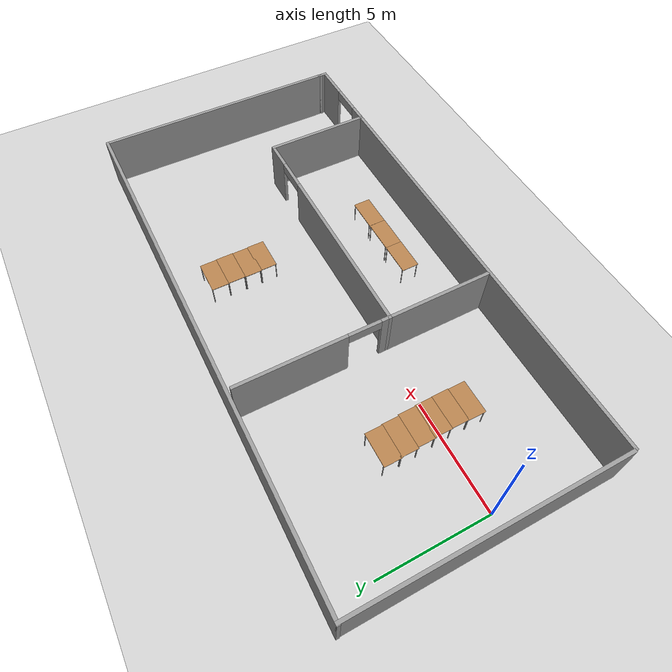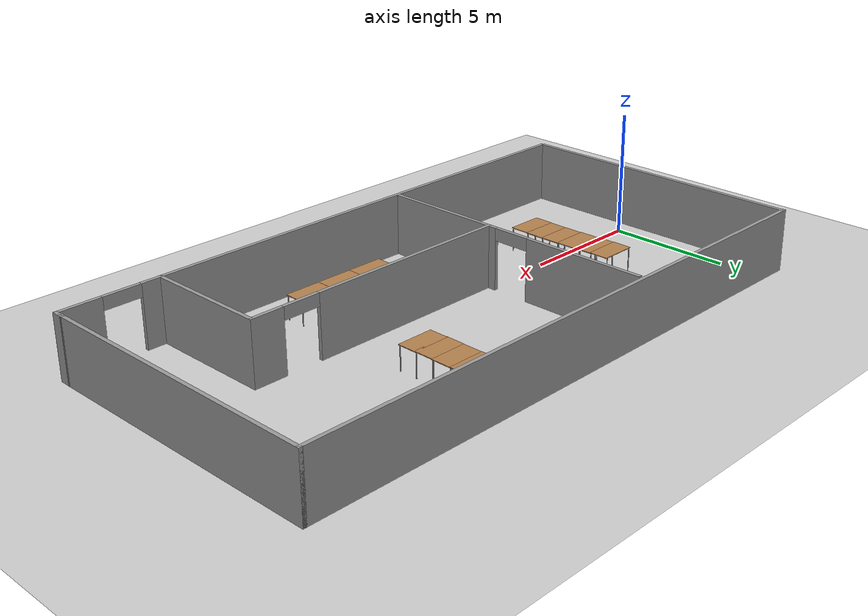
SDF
<sdf version="1.7">
 <world name="default">
  <light name="sun" type="directional">
   <pose>0 0 10 0 -0 0</pose>
   <diffuse>0.8 0.8 0.8 1</diffuse>
   <specular>0.2 0.2 0.2 1</specular>
   <attenuation>
    <range>1000</range>
    <constant>0.9</constant>
    <linear>0.01</linear>
    <quadratic>0.001</quadratic>
   </attenuation>
   <direction>-0.5 0.1 -0.9</direction>
   <spot><inner_angle>0</inner_angle><outer_angle>0</outer_angle><falloff>0</falloff></spot>
  </light>
  <model name="ground_plane">
   <static>1</static>
   <link name="link">
    <collision name="collision">
     <geometry><plane><normal>0 0 1</normal><size>100 100</size></plane></geometry>
     <surface>
      <contact><collide_bitmask>65535</collide_bitmask></contact>
      <friction><ode><mu>100</mu><mu2>50</mu2></ode></friction>
     </surface>
    </collision>
    <visual name="visual">
     <cast_shadows>0</cast_shadows>
     <geometry><plane><normal>0 0 1</normal><size>100 100</size></plane></geometry>
     <material>
      <script><uri>file://media/materials/scripts/gazebo.material</uri><name>Gazebo/Grey</name></script>
     </material>
    </visual>
   </link>
  </model>
  <gravity>0 0 -9.8</gravity>
  <magnetic_field>6e-06 2.3e-05 -4.2e-05</magnetic_field>
  <atmosphere type="adiabatic"/>
  <physics type="ode">
   <max_step_size>0.001</max_step_size>
   <real_time_factor>1</real_time_factor>
   <real_time_update_rate>1000</real_time_update_rate>
  </physics>
  <scene><ambient>0.4 0.4 0.4 1</ambient><background>0.7 0.7 0.7 1</background><shadows>1</shadows></scene>
  <spherical_coordinates>
   <surface_model>EARTH_WGS84</surface_model>
   <latitude_deg>0</latitude_deg>
   <longitude_deg>0</longitude_deg>
   <elevation>0</elevation>
   <heading_deg>0</heading_deg>
  </spherical_coordinates>
  <model name="cureroom">
   <pose>11.051 0.992144 0 0.005313 -0 0</pose>
   <link name="Wall_30">
    <collision name="Wall_30_Collision">
     <geometry><box><size>12 0.15 2.5</size></box></geometry>
     <pose>0 0 1.25 0 -0 0</pose>
    </collision>
    <visual name="Wall_30_Visual">
     <pose>0 0 1.25 0 -0 0</pose>
     <geometry><box><size>12 0.15 2.5</size></box></geometry>
     <material>
      <script><uri>file://media/materials/scripts/gazebo.material</uri><name>Gazebo/Grey</name></script>
      <ambient>1 1 1 1</ambient>
     </material>
     <meta><layer>0</layer></meta>
    </visual>
    <pose>-11.9467 0.049999 0 0 -0 1.5708</pose>
   </link>
   <link name="Wall_31">
    <collision name="Wall_31_Collision">
     <geometry><box><size>24.0798 0.15 2.5</size></box></geometry>
     <pose>0 0 1.25 0 -0 0</pose>
    </collision>
    <visual name="Wall_31_Visual">
     <pose>0 0 1.25 0 -0 0</pose>
     <geometry><box><size>24.0798 0.15 2.5</size></box></geometry>
     <material>
      <script><uri>file://media/materials/scripts/gazebo.material</uri><name>Gazebo/Grey</name></script>
      <ambient>1 1 1 1</ambient>
     </material>
     <meta><layer>0</layer></meta>
    </visual>
    <pose>-0.008428 5.975 0 0 -0 0</pose>
   </link>
   <link name="Wall_32">
    <collision name="Wall_32_Collision">
     <geometry><box><size>11.75 0.15 2.5</size></box></geometry>
     <pose>0 0 1.25 0 -0 0</pose>
    </collision>
    <visual name="Wall_32_Visual">
     <pose>0 0 1.25 0 -0 0</pose>
     <geometry><box><size>11.75 0.15 2.5</size></box></geometry>
     <material>
      <script><uri>file://media/materials/scripts/gazebo.material</uri><name>Gazebo/Grey</name></script>
      <ambient>1 1 1 1</ambient>
     </material>
     <meta><layer>0</layer></meta>
    </visual>
    <pose>11.9565 0.174999 0 0 -0 -1.5708</pose>
   </link>
   <link name="Wall_33">
    <collision name="Wall_33_Collision">
     <geometry><box><size>0.25 0.15 2.5</size></box></geometry>
     <pose>0 0 1.25 0 -0 0</pose>
    </collision>
    <visual name="Wall_33_Visual">
     <pose>0 0 1.25 0 -0 0</pose>
     <geometry><box><size>0.25 0.15 2.5</size></box></geometry>
     <material>
      <script><uri>file://media/materials/scripts/gazebo.material</uri><name>Gazebo/Grey</name></script>
      <ambient>1 1 1 1</ambient>
     </material>
     <meta><layer>0</layer></meta>
    </visual>
    <pose>11.9435 -5.6733 0 0 -0 -1.8326</pose>
   </link>
   <link name="Wall_34">
    <collision name="Wall_34_Collision">
     <geometry><box><size>0.25 0.15 2.5</size></box></geometry>
     <pose>0 0 1.25 0 -0 0</pose>
    </collision>
    <visual name="Wall_34_Visual">
     <pose>0 0 1.25 0 -0 0</pose>
     <geometry><box><size>0.25 0.15 2.5</size></box></geometry>
     <material>
      <script><uri>file://media/materials/scripts/gazebo.material</uri><name>Gazebo/Grey</name></script>
      <ambient>1 1 1 1</ambient>
     </material>
     <meta><layer>0</layer></meta>
    </visual>
    <pose>11.9435 -5.6733 0 0 -0 1.309</pose>
   </link>
   <link name="Wall_35">
    <collision name="Wall_35_Collision">
     <geometry><box><size>0.5 0.15 2.5</size></box></geometry>
     <pose>0 0 1.25 0 -0 0</pose>
    </collision>
    <visual name="Wall_35_Visual">
     <pose>0 0 1.25 0 -0 0</pose>
     <geometry><box><size>0.5 0.15 2.5</size></box></geometry>
     <material>
      <script><uri>file://media/materials/scripts/gazebo.material</uri><name>Gazebo/Grey</name></script>
      <ambient>1 1 1 1</ambient>
     </material>
     <meta><layer>0</layer></meta>
    </visual>
    <pose>11.9565 -5.8 0 0 -0 -1.5708</pose>
   </link>
   <link name="Wall_36">
    <pose>0.031472 -5.975 0 0 -0 3.14159</pose>
    <visual name="Wall_36_Visual_0">
     <pose>-11.1293 0 1.25 0 -0 0</pose>
     <geometry><box><size>1.74136 0.15 2.5</size></box></geometry>
     <material>
      <script><uri>file://media/materials/scripts/gazebo.material</uri><name>Gazebo/Grey</name></script>
      <ambient>1 1 1 1</ambient>
     </material>
     <meta><layer>0</layer></meta>
    </visual>
    <collision name="Wall_36_Collision_0">
     <geometry><box><size>1.74136 0.15 2.5</size></box></geometry>
     <pose>-11.1293 0 1.25 0 -0 0</pose>
    </collision>
    <visual name="Wall_36_Visual_1">
     <pose>1.62068 0 1.25 0 -0 0</pose>
     <geometry><box><size>20.7586 0.15 2.5</size></box></geometry>
     <material>
      <script><uri>file://media/materials/scripts/gazebo.material</uri><name>Gazebo/Grey</name></script>
      <ambient>1 1 1 1</ambient>
     </material>
     <meta><layer>0</layer></meta>
    </visual>
    <collision name="Wall_36_Collision_1">
     <geometry><box><size>20.7586 0.15 2.5</size></box></geometry>
     <pose>1.62068 0 1.25 0 -0 0</pose>
    </collision>
    <visual name="Wall_36_Visual_2">
     <pose>-9.50864 0 2.25 0 -0 0</pose>
     <geometry><box><size>1.5 0.15 0.5</size></box></geometry>
     <material>
      <script><uri>file://media/materials/scripts/gazebo.material</uri><name>Gazebo/Grey</name></script>
      <ambient>1 1 1 1</ambient>
     </material>
     <meta><layer>0</layer></meta>
    </visual>
    <collision name="Wall_36_Collision_2">
     <geometry><box><size>1.5 0.15 0.5</size></box></geometry>
     <pose>-9.50864 0 2.25 0 -0 0</pose>
    </collision>
   </link>
   <link name="Wall_38">
    <pose>-3.12158 -0.063414 0 0 -0 -1.5708</pose>
    <visual name="Wall_38_Visual_0">
     <pose>-3.36638 0 1.25 0 -0 0</pose>
     <geometry><box><size>5.01724 0.15 2.5</size></box></geometry>
     <material>
      <script><uri>file://media/materials/scripts/gazebo.material</uri><name>Gazebo/Grey</name></script>
      <ambient>1 1 1 1</ambient>
     </material>
     <meta><layer>0</layer></meta>
    </visual>
    <collision name="Wall_38_Collision_0">
     <geometry><box><size>5.01724 0.15 2.5</size></box></geometry>
     <pose>-3.36638 0 1.25 0 -0 0</pose>
    </collision>
    <visual name="Wall_38_Visual_1">
     <pose>3.25862 0 1.25 0 -0 0</pose>
     <geometry><box><size>5.23276 0.15 2.5</size></box></geometry>
     <material>
      <script><uri>file://media/materials/scripts/gazebo.material</uri><name>Gazebo/Grey</name></script>
      <ambient>1 1 1 1</ambient>
     </material>
     <meta><layer>0</layer></meta>
    </visual>
    <collision name="Wall_38_Collision_1">
     <geometry><box><size>5.23276 0.15 2.5</size></box></geometry>
     <pose>3.25862 0 1.25 0 -0 0</pose>
    </collision>
    <visual name="Wall_38_Visual_2">
     <pose>-0.107755 0 2.25 0 -0 0</pose>
     <geometry><box><size>1.5 0.15 0.5</size></box></geometry>
     <material>
      <script><uri>file://media/materials/scripts/gazebo.material</uri><name>Gazebo/Grey</name></script>
      <ambient>1 1 1 1</ambient>
     </material>
     <meta><layer>0</layer></meta>
    </visual>
    <collision name="Wall_38_Collision_2">
     <geometry><box><size>1.5 0.15 0.5</size></box></geometry>
     <pose>-0.107755 0 2.25 0 -0 0</pose>
    </collision>
   </link>
   <link name="Wall_42">
    <pose>2.42842 -1.09966 0 0 -0 0</pose>
    <visual name="Wall_42_Visual_0">
     <pose>-1.42717 0 1.25 0 -0 0</pose>
     <geometry><box><size>8.39567 0.15 2.5</size></box></geometry>
     <material>
      <script><uri>file://media/materials/scripts/gazebo.material</uri><name>Gazebo/Grey</name></script>
      <ambient>1 1 1 1</ambient>
     </material>
     <meta><layer>0</layer></meta>
    </visual>
    <collision name="Wall_42_Collision_0">
     <geometry><box><size>8.39567 0.15 2.5</size></box></geometry>
     <pose>-1.42717 0 1.25 0 -0 0</pose>
    </collision>
    <visual name="Wall_42_Visual_1">
     <pose>4.94783 0 1.25 0 -0 0</pose>
     <geometry><box><size>1.35433 0.15 2.5</size></box></geometry>
     <material>
      <script><uri>file://media/materials/scripts/gazebo.material</uri><name>Gazebo/Grey</name></script>
      <ambient>1 1 1 1</ambient>
     </material>
     <meta><layer>0</layer></meta>
    </visual>
    <collision name="Wall_42_Collision_1">
     <geometry><box><size>1.35433 0.15 2.5</size></box></geometry>
     <pose>4.94783 0 1.25 0 -0 0</pose>
    </collision>
    <visual name="Wall_42_Visual_2">
     <pose>3.52067 0 2.25 0 -0 0</pose>
     <geometry><box><size>1.5 0.15 0.5</size></box></geometry>
     <material>
      <script><uri>file://media/materials/scripts/gazebo.material</uri><name>Gazebo/Grey</name></script>
      <ambient>1 1 1 1</ambient>
     </material>
     <meta><layer>0</layer></meta>
    </visual>
    <collision name="Wall_42_Collision_2">
     <geometry><box><size>1.5 0.15 0.5</size></box></geometry>
     <pose>3.52067 0 2.25 0 -0 0</pose>
    </collision>
   </link>
   <link name="Wall_43">
    <collision name="Wall_43_Collision">
     <geometry><box><size>5 0.15 2.5</size></box></geometry>
     <pose>0 0 1.25 0 -0 0</pose>
    </collision>
    <visual name="Wall_43_Visual">
     <pose>0 0 1.25 0 -0 0</pose>
     <geometry><box><size>5 0.15 2.5</size></box></geometry>
     <material>
      <script><uri>file://media/materials/scripts/gazebo.material</uri><name>Gazebo/Grey</name></script>
      <ambient>1 1 1 1</ambient>
     </material>
     <meta><layer>0</layer></meta>
    </visual>
    <pose>7.97842 -3.52467 0 0 -0 -1.5708</pose>
   </link>
   <static>1</static>
  </model>
  <model name="table">
   <static>1</static>
   <link name="link">
    <collision name="surface">
     <pose>0 0 1 0 -0 0</pose>
     <geometry><box><size>1.5 0.8 0.03</size></box></geometry>
     <surface><friction><ode><mu>0.6</mu><mu2>0.6</mu2></ode></friction></surface>
    </collision>
    <visual name="visual1">
     <pose>0 0 1 0 -0 0</pose>
     <geometry><box><size>1.5 0.8 0.03</size></box></geometry>
     <material>
      <script><uri>file://media/materials/scripts/gazebo.material</uri><name>Gazebo/Wood</name></script>
     </material>
    </visual>
    <collision name="front_left_leg">
     <pose>0.68 0.38 0.5 0 -0 0</pose>
     <geometry><cylinder><radius>0.02</radius><length>1</length></cylinder></geometry>
    </collision>
    <visual name="front_left_leg">
     <pose>0.68 0.38 0.5 0 -0 0</pose>
     <geometry><cylinder><radius>0.02</radius><length>1</length></cylinder></geometry>
     <material>
      <script><uri>file://media/materials/scripts/gazebo.material</uri><name>Gazebo/Grey</name></script>
     </material>
    </visual>
    <collision name="front_right_leg">
     <pose>0.68 -0.38 0.5 0 -0 0</pose>
     <geometry><cylinder><radius>0.02</radius><length>1</length></cylinder></geometry>
    </collision>
    <visual name="front_right_leg">
     <pose>0.68 -0.38 0.5 0 -0 0</pose>
     <geometry><cylinder><radius>0.02</radius><length>1</length></cylinder></geometry>
     <material>
      <script><uri>file://media/materials/scripts/gazebo.material</uri><name>Gazebo/Grey</name></script>
     </material>
    </visual>
    <collision name="back_right_leg">
     <pose>-0.68 -0.38 0.5 0 -0 0</pose>
     <geometry><cylinder><radius>0.02</radius><length>1</length></cylinder></geometry>
    </collision>
    <visual name="back_right_leg">
     <pose>-0.68 -0.38 0.5 0 -0 0</pose>
     <geometry><cylinder><radius>0.02</radius><length>1</length></cylinder></geometry>
     <material>
      <script><uri>file://media/materials/scripts/gazebo.material</uri><name>Gazebo/Grey</name></script>
     </material>
    </visual>
    <collision name="back_left_leg">
     <pose>-0.68 0.38 0.5 0 -0 0</pose>
     <geometry><cylinder><radius>0.02</radius><length>1</length></cylinder></geometry>
    </collision>
    <visual name="back_left_leg">
     <pose>-0.68 0.38 0.5 0 -0 0</pose>
     <geometry><cylinder><radius>0.02</radius><length>1</length></cylinder></geometry>
     <material>
      <script><uri>file://media/materials/scripts/gazebo.material</uri><name>Gazebo/Grey</name></script>
     </material>
    </visual>
   </link>
   <pose>14.3183 -2.87807 0 0 -0 0</pose>
  </model>
  <model name="table_0">
   <static>1</static>
   <link name="link">
    <collision name="surface">
     <pose>0 0 1 0 -0 0</pose>
     <geometry><box><size>1.5 0.8 0.03</size></box></geometry>
     <surface><friction><ode><mu>0.6</mu><mu2>0.6</mu2></ode></friction></surface>
    </collision>
    <visual name="visual1">
     <pose>0 0 1 0 -0 0</pose>
     <geometry><box><size>1.5 0.8 0.03</size></box></geometry>
     <material>
      <script><uri>file://media/materials/scripts/gazebo.material</uri><name>Gazebo/Wood</name></script>
     </material>
    </visual>
    <collision name="front_left_leg">
     <pose>0.68 0.38 0.5 0 -0 0</pose>
     <geometry><cylinder><radius>0.02</radius><length>1</length></cylinder></geometry>
    </collision>
    <visual name="front_left_leg">
     <pose>0.68 0.38 0.5 0 -0 0</pose>
     <geometry><cylinder><radius>0.02</radius><length>1</length></cylinder></geometry>
     <material>
      <script><uri>file://media/materials/scripts/gazebo.material</uri><name>Gazebo/Grey</name></script>
     </material>
    </visual>
    <collision name="front_right_leg">
     <pose>0.68 -0.38 0.5 0 -0 0</pose>
     <geometry><cylinder><radius>0.02</radius><length>1</length></cylinder></geometry>
    </collision>
    <visual name="front_right_leg">
     <pose>0.68 -0.38 0.5 0 -0 0</pose>
     <geometry><cylinder><radius>0.02</radius><length>1</length></cylinder></geometry>
     <material>
      <script><uri>file://media/materials/scripts/gazebo.material</uri><name>Gazebo/Grey</name></script>
     </material>
    </visual>
    <collision name="back_right_leg">
     <pose>-0.68 -0.38 0.5 0 -0 0</pose>
     <geometry><cylinder><radius>0.02</radius><length>1</length></cylinder></geometry>
    </collision>
    <visual name="back_right_leg">
     <pose>-0.68 -0.38 0.5 0 -0 0</pose>
     <geometry><cylinder><radius>0.02</radius><length>1</length></cylinder></geometry>
     <material>
      <script><uri>file://media/materials/scripts/gazebo.material</uri><name>Gazebo/Grey</name></script>
     </material>
    </visual>
    <collision name="back_left_leg">
     <pose>-0.68 0.38 0.5 0 -0 0</pose>
     <geometry><cylinder><radius>0.02</radius><length>1</length></cylinder></geometry>
    </collision>
    <visual name="back_left_leg">
     <pose>-0.68 0.38 0.5 0 -0 0</pose>
     <geometry><cylinder><radius>0.02</radius><length>1</length></cylinder></geometry>
     <material>
      <script><uri>file://media/materials/scripts/gazebo.material</uri><name>Gazebo/Grey</name></script>
     </material>
    </visual>
   </link>
   <pose>12.8134 -2.88666 0 0 -0 0</pose>
  </model>
  <model name="table_1">
   <static>1</static>
   <link name="link">
    <collision name="surface">
     <pose>0 0 1 0 -0 0</pose>
     <geometry><box><size>1.5 0.8 0.03</size></box></geometry>
     <surface><friction><ode><mu>0.6</mu><mu2>0.6</mu2></ode></friction></surface>
    </collision>
    <visual name="visual1">
     <pose>0 0 1 0 -0 0</pose>
     <geometry><box><size>1.5 0.8 0.03</size></box></geometry>
     <material>
      <script><uri>file://media/materials/scripts/gazebo.material</uri><name>Gazebo/Wood</name></script>
     </material>
    </visual>
    <collision name="front_left_leg">
     <pose>0.68 0.38 0.5 0 -0 0</pose>
     <geometry><cylinder><radius>0.02</radius><length>1</length></cylinder></geometry>
    </collision>
    <visual name="front_left_leg">
     <pose>0.68 0.38 0.5 0 -0 0</pose>
     <geometry><cylinder><radius>0.02</radius><length>1</length></cylinder></geometry>
     <material>
      <script><uri>file://media/materials/scripts/gazebo.material</uri><name>Gazebo/Grey</name></script>
     </material>
    </visual>
    <collision name="front_right_leg">
     <pose>0.68 -0.38 0.5 0 -0 0</pose>
     <geometry><cylinder><radius>0.02</radius><length>1</length></cylinder></geometry>
    </collision>
    <visual name="front_right_leg">
     <pose>0.68 -0.38 0.5 0 -0 0</pose>
     <geometry><cylinder><radius>0.02</radius><length>1</length></cylinder></geometry>
     <material>
      <script><uri>file://media/materials/scripts/gazebo.material</uri><name>Gazebo/Grey</name></script>
     </material>
    </visual>
    <collision name="back_right_leg">
     <pose>-0.68 -0.38 0.5 0 -0 0</pose>
     <geometry><cylinder><radius>0.02</radius><length>1</length></cylinder></geometry>
    </collision>
    <visual name="back_right_leg">
     <pose>-0.68 -0.38 0.5 0 -0 0</pose>
     <geometry><cylinder><radius>0.02</radius><length>1</length></cylinder></geometry>
     <material>
      <script><uri>file://media/materials/scripts/gazebo.material</uri><name>Gazebo/Grey</name></script>
     </material>
    </visual>
    <collision name="back_left_leg">
     <pose>-0.68 0.38 0.5 0 -0 0</pose>
     <geometry><cylinder><radius>0.02</radius><length>1</length></cylinder></geometry>
    </collision>
    <visual name="back_left_leg">
     <pose>-0.68 0.38 0.5 0 -0 0</pose>
     <geometry><cylinder><radius>0.02</radius><length>1</length></cylinder></geometry>
     <material>
      <script><uri>file://media/materials/scripts/gazebo.material</uri><name>Gazebo/Grey</name></script>
     </material>
    </visual>
   </link>
   <pose>11.3217 -2.88878 0 0 -0 0</pose>
  </model>
  <model name="table_2">
   <static>1</static>
   <link name="link">
    <collision name="surface">
     <pose>0 0 1 0 -0 0</pose>
     <geometry><box><size>1.5 0.8 0.03</size></box></geometry>
     <surface><friction><ode><mu>0.6</mu><mu2>0.6</mu2></ode></friction></surface>
    </collision>
    <visual name="visual1">
     <pose>0 0 1 0 -0 0</pose>
     <geometry><box><size>1.5 0.8 0.03</size></box></geometry>
     <material>
      <script><uri>file://media/materials/scripts/gazebo.material</uri><name>Gazebo/Wood</name></script>
     </material>
    </visual>
    <collision name="front_left_leg">
     <pose>0.68 0.38 0.5 0 -0 0</pose>
     <geometry><cylinder><radius>0.02</radius><length>1</length></cylinder></geometry>
    </collision>
    <visual name="front_left_leg">
     <pose>0.68 0.38 0.5 0 -0 0</pose>
     <geometry><cylinder><radius>0.02</radius><length>1</length></cylinder></geometry>
     <material>
      <script><uri>file://media/materials/scripts/gazebo.material</uri><name>Gazebo/Grey</name></script>
     </material>
    </visual>
    <collision name="front_right_leg">
     <pose>0.68 -0.38 0.5 0 -0 0</pose>
     <geometry><cylinder><radius>0.02</radius><length>1</length></cylinder></geometry>
    </collision>
    <visual name="front_right_leg">
     <pose>0.68 -0.38 0.5 0 -0 0</pose>
     <geometry><cylinder><radius>0.02</radius><length>1</length></cylinder></geometry>
     <material>
      <script><uri>file://media/materials/scripts/gazebo.material</uri><name>Gazebo/Grey</name></script>
     </material>
    </visual>
    <collision name="back_right_leg">
     <pose>-0.68 -0.38 0.5 0 -0 0</pose>
     <geometry><cylinder><radius>0.02</radius><length>1</length></cylinder></geometry>
    </collision>
    <visual name="back_right_leg">
     <pose>-0.68 -0.38 0.5 0 -0 0</pose>
     <geometry><cylinder><radius>0.02</radius><length>1</length></cylinder></geometry>
     <material>
      <script><uri>file://media/materials/scripts/gazebo.material</uri><name>Gazebo/Grey</name></script>
     </material>
    </visual>
    <collision name="back_left_leg">
     <pose>-0.68 0.38 0.5 0 -0 0</pose>
     <geometry><cylinder><radius>0.02</radius><length>1</length></cylinder></geometry>
    </collision>
    <visual name="back_left_leg">
     <pose>-0.68 0.38 0.5 0 -0 0</pose>
     <geometry><cylinder><radius>0.02</radius><length>1</length></cylinder></geometry>
     <material>
      <script><uri>file://media/materials/scripts/gazebo.material</uri><name>Gazebo/Grey</name></script>
     </material>
    </visual>
   </link>
   <pose>14.2706 5.08478 0 0 -0 0</pose>
  </model>
  <model name="table_3">
   <static>1</static>
   <link name="link">
    <collision name="surface">
     <pose>0 0 1 0 -0 0</pose>
     <geometry><box><size>1.5 0.8 0.03</size></box></geometry>
     <surface><friction><ode><mu>0.6</mu><mu2>0.6</mu2></ode></friction></surface>
    </collision>
    <visual name="visual1">
     <pose>0 0 1 0 -0 0</pose>
     <geometry><box><size>1.5 0.8 0.03</size></box></geometry>
     <material>
      <script><uri>file://media/materials/scripts/gazebo.material</uri><name>Gazebo/Wood</name></script>
     </material>
    </visual>
    <collision name="front_left_leg">
     <pose>0.68 0.38 0.5 0 -0 0</pose>
     <geometry><cylinder><radius>0.02</radius><length>1</length></cylinder></geometry>
    </collision>
    <visual name="front_left_leg">
     <pose>0.68 0.38 0.5 0 -0 0</pose>
     <geometry><cylinder><radius>0.02</radius><length>1</length></cylinder></geometry>
     <material>
      <script><uri>file://media/materials/scripts/gazebo.material</uri><name>Gazebo/Grey</name></script>
     </material>
    </visual>
    <collision name="front_right_leg">
     <pose>0.68 -0.38 0.5 0 -0 0</pose>
     <geometry><cylinder><radius>0.02</radius><length>1</length></cylinder></geometry>
    </collision>
    <visual name="front_right_leg">
     <pose>0.68 -0.38 0.5 0 -0 0</pose>
     <geometry><cylinder><radius>0.02</radius><length>1</length></cylinder></geometry>
     <material>
      <script><uri>file://media/materials/scripts/gazebo.material</uri><name>Gazebo/Grey</name></script>
     </material>
    </visual>
    <collision name="back_right_leg">
     <pose>-0.68 -0.38 0.5 0 -0 0</pose>
     <geometry><cylinder><radius>0.02</radius><length>1</length></cylinder></geometry>
    </collision>
    <visual name="back_right_leg">
     <pose>-0.68 -0.38 0.5 0 -0 0</pose>
     <geometry><cylinder><radius>0.02</radius><length>1</length></cylinder></geometry>
     <material>
      <script><uri>file://media/materials/scripts/gazebo.material</uri><name>Gazebo/Grey</name></script>
     </material>
    </visual>
    <collision name="back_left_leg">
     <pose>-0.68 0.38 0.5 0 -0 0</pose>
     <geometry><cylinder><radius>0.02</radius><length>1</length></cylinder></geometry>
    </collision>
    <visual name="back_left_leg">
     <pose>-0.68 0.38 0.5 0 -0 0</pose>
     <geometry><cylinder><radius>0.02</radius><length>1</length></cylinder></geometry>
     <material>
      <script><uri>file://media/materials/scripts/gazebo.material</uri><name>Gazebo/Grey</name></script>
     </material>
    </visual>
   </link>
   <pose>14.2845 4.30469 0 0 -0 0</pose>
  </model>
  <model name="table_4">
   <static>1</static>
   <link name="link">
    <collision name="surface">
     <pose>0 0 1 0 -0 0</pose>
     <geometry><box><size>1.5 0.8 0.03</size></box></geometry>
     <surface><friction><ode><mu>0.6</mu><mu2>0.6</mu2></ode></friction></surface>
    </collision>
    <visual name="visual1">
     <pose>0 0 1 0 -0 0</pose>
     <geometry><box><size>1.5 0.8 0.03</size></box></geometry>
     <material>
      <script><uri>file://media/materials/scripts/gazebo.material</uri><name>Gazebo/Wood</name></script>
     </material>
    </visual>
    <collision name="front_left_leg">
     <pose>0.68 0.38 0.5 0 -0 0</pose>
     <geometry><cylinder><radius>0.02</radius><length>1</length></cylinder></geometry>
    </collision>
    <visual name="front_left_leg">
     <pose>0.68 0.38 0.5 0 -0 0</pose>
     <geometry><cylinder><radius>0.02</radius><length>1</length></cylinder></geometry>
     <material>
      <script><uri>file://media/materials/scripts/gazebo.material</uri><name>Gazebo/Grey</name></script>
     </material>
    </visual>
    <collision name="front_right_leg">
     <pose>0.68 -0.38 0.5 0 -0 0</pose>
     <geometry><cylinder><radius>0.02</radius><length>1</length></cylinder></geometry>
    </collision>
    <visual name="front_right_leg">
     <pose>0.68 -0.38 0.5 0 -0 0</pose>
     <geometry><cylinder><radius>0.02</radius><length>1</length></cylinder></geometry>
     <material>
      <script><uri>file://media/materials/scripts/gazebo.material</uri><name>Gazebo/Grey</name></script>
     </material>
    </visual>
    <collision name="back_right_leg">
     <pose>-0.68 -0.38 0.5 0 -0 0</pose>
     <geometry><cylinder><radius>0.02</radius><length>1</length></cylinder></geometry>
    </collision>
    <visual name="back_right_leg">
     <pose>-0.68 -0.38 0.5 0 -0 0</pose>
     <geometry><cylinder><radius>0.02</radius><length>1</length></cylinder></geometry>
     <material>
      <script><uri>file://media/materials/scripts/gazebo.material</uri><name>Gazebo/Grey</name></script>
     </material>
    </visual>
    <collision name="back_left_leg">
     <pose>-0.68 0.38 0.5 0 -0 0</pose>
     <geometry><cylinder><radius>0.02</radius><length>1</length></cylinder></geometry>
    </collision>
    <visual name="back_left_leg">
     <pose>-0.68 0.38 0.5 0 -0 0</pose>
     <geometry><cylinder><radius>0.02</radius><length>1</length></cylinder></geometry>
     <material>
      <script><uri>file://media/materials/scripts/gazebo.material</uri><name>Gazebo/Grey</name></script>
     </material>
    </visual>
   </link>
   <pose>14.2673 3.50592 0 0 -0 0</pose>
  </model>
  <model name="table_5">
   <static>1</static>
   <link name="link">
    <collision name="surface">
     <pose>0 0 1 0 -0 0</pose>
     <geometry><box><size>1.5 0.8 0.03</size></box></geometry>
     <surface><friction><ode><mu>0.6</mu><mu2>0.6</mu2></ode></friction></surface>
    </collision>
    <visual name="visual1">
     <pose>0 0 1 0 -0 0</pose>
     <geometry><box><size>1.5 0.8 0.03</size></box></geometry>
     <material>
      <script><uri>file://media/materials/scripts/gazebo.material</uri><name>Gazebo/Wood</name></script>
     </material>
    </visual>
    <collision name="front_left_leg">
     <pose>0.68 0.38 0.5 0 -0 0</pose>
     <geometry><cylinder><radius>0.02</radius><length>1</length></cylinder></geometry>
    </collision>
    <visual name="front_left_leg">
     <pose>0.68 0.38 0.5 0 -0 0</pose>
     <geometry><cylinder><radius>0.02</radius><length>1</length></cylinder></geometry>
     <material>
      <script><uri>file://media/materials/scripts/gazebo.material</uri><name>Gazebo/Grey</name></script>
     </material>
    </visual>
    <collision name="front_right_leg">
     <pose>0.68 -0.38 0.5 0 -0 0</pose>
     <geometry><cylinder><radius>0.02</radius><length>1</length></cylinder></geometry>
    </collision>
    <visual name="front_right_leg">
     <pose>0.68 -0.38 0.5 0 -0 0</pose>
     <geometry><cylinder><radius>0.02</radius><length>1</length></cylinder></geometry>
     <material>
      <script><uri>file://media/materials/scripts/gazebo.material</uri><name>Gazebo/Grey</name></script>
     </material>
    </visual>
    <collision name="back_right_leg">
     <pose>-0.68 -0.38 0.5 0 -0 0</pose>
     <geometry><cylinder><radius>0.02</radius><length>1</length></cylinder></geometry>
    </collision>
    <visual name="back_right_leg">
     <pose>-0.68 -0.38 0.5 0 -0 0</pose>
     <geometry><cylinder><radius>0.02</radius><length>1</length></cylinder></geometry>
     <material>
      <script><uri>file://media/materials/scripts/gazebo.material</uri><name>Gazebo/Grey</name></script>
     </material>
    </visual>
    <collision name="back_left_leg">
     <pose>-0.68 0.38 0.5 0 -0 0</pose>
     <geometry><cylinder><radius>0.02</radius><length>1</length></cylinder></geometry>
    </collision>
    <visual name="back_left_leg">
     <pose>-0.68 0.38 0.5 0 -0 0</pose>
     <geometry><cylinder><radius>0.02</radius><length>1</length></cylinder></geometry>
     <material>
      <script><uri>file://media/materials/scripts/gazebo.material</uri><name>Gazebo/Grey</name></script>
     </material>
    </visual>
   </link>
   <pose>14.2877 2.77968 0 0 -0 0</pose>
  </model>
  <model name="table_6">
   <static>1</static>
   <link name="link">
    <collision name="surface">
     <pose>0 0 1 0 -0 0</pose>
     <geometry><box><size>1.5 0.8 0.03</size></box></geometry>
     <surface><friction><ode><mu>0.6</mu><mu2>0.6</mu2></ode></friction></surface>
    </collision>
    <visual name="visual1">
     <pose>0 0 1 0 -0 0</pose>
     <geometry><box><size>1.5 0.8 0.03</size></box></geometry>
     <material>
      <script><uri>file://media/materials/scripts/gazebo.material</uri><name>Gazebo/Wood</name></script>
     </material>
    </visual>
    <collision name="front_left_leg">
     <pose>0.68 0.38 0.5 0 -0 0</pose>
     <geometry><cylinder><radius>0.02</radius><length>1</length></cylinder></geometry>
    </collision>
    <visual name="front_left_leg">
     <pose>0.68 0.38 0.5 0 -0 0</pose>
     <geometry><cylinder><radius>0.02</radius><length>1</length></cylinder></geometry>
     <material>
      <script><uri>file://media/materials/scripts/gazebo.material</uri><name>Gazebo/Grey</name></script>
     </material>
    </visual>
    <collision name="front_right_leg">
     <pose>0.68 -0.38 0.5 0 -0 0</pose>
     <geometry><cylinder><radius>0.02</radius><length>1</length></cylinder></geometry>
    </collision>
    <visual name="front_right_leg">
     <pose>0.68 -0.38 0.5 0 -0 0</pose>
     <geometry><cylinder><radius>0.02</radius><length>1</length></cylinder></geometry>
     <material>
      <script><uri>file://media/materials/scripts/gazebo.material</uri><name>Gazebo/Grey</name></script>
     </material>
    </visual>
    <collision name="back_right_leg">
     <pose>-0.68 -0.38 0.5 0 -0 0</pose>
     <geometry><cylinder><radius>0.02</radius><length>1</length></cylinder></geometry>
    </collision>
    <visual name="back_right_leg">
     <pose>-0.68 -0.38 0.5 0 -0 0</pose>
     <geometry><cylinder><radius>0.02</radius><length>1</length></cylinder></geometry>
     <material>
      <script><uri>file://media/materials/scripts/gazebo.material</uri><name>Gazebo/Grey</name></script>
     </material>
    </visual>
    <collision name="back_left_leg">
     <pose>-0.68 0.38 0.5 0 -0 0</pose>
     <geometry><cylinder><radius>0.02</radius><length>1</length></cylinder></geometry>
    </collision>
    <visual name="back_left_leg">
     <pose>-0.68 0.38 0.5 0 -0 0</pose>
     <geometry><cylinder><radius>0.02</radius><length>1</length></cylinder></geometry>
     <material>
      <script><uri>file://media/materials/scripts/gazebo.material</uri><name>Gazebo/Grey</name></script>
     </material>
    </visual>
   </link>
   <pose>3.94455 -1.39113 0 0 -0 0</pose>
  </model>
  <model name="table_7">
   <static>1</static>
   <link name="link">
    <collision name="surface">
     <pose>0 0 1 0 -0 0</pose>
     <geometry><box><size>1.5 0.8 0.03</size></box></geometry>
     <surface><friction><ode><mu>0.6</mu><mu2>0.6</mu2></ode></friction></surface>
    </collision>
    <visual name="visual1">
     <pose>0 0 1 0 -0 0</pose>
     <geometry><box><size>1.5 0.8 0.03</size></box></geometry>
     <material>
      <script><uri>file://media/materials/scripts/gazebo.material</uri><name>Gazebo/Wood</name></script>
     </material>
    </visual>
    <collision name="front_left_leg">
     <pose>0.68 0.38 0.5 0 -0 0</pose>
     <geometry><cylinder><radius>0.02</radius><length>1</length></cylinder></geometry>
    </collision>
    <visual name="front_left_leg">
     <pose>0.68 0.38 0.5 0 -0 0</pose>
     <geometry><cylinder><radius>0.02</radius><length>1</length></cylinder></geometry>
     <material>
      <script><uri>file://media/materials/scripts/gazebo.material</uri><name>Gazebo/Grey</name></script>
     </material>
    </visual>
    <collision name="front_right_leg">
     <pose>0.68 -0.38 0.5 0 -0 0</pose>
     <geometry><cylinder><radius>0.02</radius><length>1</length></cylinder></geometry>
    </collision>
    <visual name="front_right_leg">
     <pose>0.68 -0.38 0.5 0 -0 0</pose>
     <geometry><cylinder><radius>0.02</radius><length>1</length></cylinder></geometry>
     <material>
      <script><uri>file://media/materials/scripts/gazebo.material</uri><name>Gazebo/Grey</name></script>
     </material>
    </visual>
    <collision name="back_right_leg">
     <pose>-0.68 -0.38 0.5 0 -0 0</pose>
     <geometry><cylinder><radius>0.02</radius><length>1</length></cylinder></geometry>
    </collision>
    <visual name="back_right_leg">
     <pose>-0.68 -0.38 0.5 0 -0 0</pose>
     <geometry><cylinder><radius>0.02</radius><length>1</length></cylinder></geometry>
     <material>
      <script><uri>file://media/materials/scripts/gazebo.material</uri><name>Gazebo/Grey</name></script>
     </material>
    </visual>
    <collision name="back_left_leg">
     <pose>-0.68 0.38 0.5 0 -0 0</pose>
     <geometry><cylinder><radius>0.02</radius><length>1</length></cylinder></geometry>
    </collision>
    <visual name="back_left_leg">
     <pose>-0.68 0.38 0.5 0 -0 0</pose>
     <geometry><cylinder><radius>0.02</radius><length>1</length></cylinder></geometry>
     <material>
      <script><uri>file://media/materials/scripts/gazebo.material</uri><name>Gazebo/Grey</name></script>
     </material>
    </visual>
   </link>
   <pose>3.96475 -0.609792 0 0 -0 0</pose>
  </model>
  <model name="table_8">
   <static>1</static>
   <link name="link">
    <collision name="surface">
     <pose>0 0 1 0 -0 0</pose>
     <geometry><box><size>1.5 0.8 0.03</size></box></geometry>
     <surface><friction><ode><mu>0.6</mu><mu2>0.6</mu2></ode></friction></surface>
    </collision>
    <visual name="visual1">
     <pose>0 0 1 0 -0 0</pose>
     <geometry><box><size>1.5 0.8 0.03</size></box></geometry>
     <material>
      <script><uri>file://media/materials/scripts/gazebo.material</uri><name>Gazebo/Wood</name></script>
     </material>
    </visual>
    <collision name="front_left_leg">
     <pose>0.68 0.38 0.5 0 -0 0</pose>
     <geometry><cylinder><radius>0.02</radius><length>1</length></cylinder></geometry>
    </collision>
    <visual name="front_left_leg">
     <pose>0.68 0.38 0.5 0 -0 0</pose>
     <geometry><cylinder><radius>0.02</radius><length>1</length></cylinder></geometry>
     <material>
      <script><uri>file://media/materials/scripts/gazebo.material</uri><name>Gazebo/Grey</name></script>
     </material>
    </visual>
    <collision name="front_right_leg">
     <pose>0.68 -0.38 0.5 0 -0 0</pose>
     <geometry><cylinder><radius>0.02</radius><length>1</length></cylinder></geometry>
    </collision>
    <visual name="front_right_leg">
     <pose>0.68 -0.38 0.5 0 -0 0</pose>
     <geometry><cylinder><radius>0.02</radius><length>1</length></cylinder></geometry>
     <material>
      <script><uri>file://media/materials/scripts/gazebo.material</uri><name>Gazebo/Grey</name></script>
     </material>
    </visual>
    <collision name="back_right_leg">
     <pose>-0.68 -0.38 0.5 0 -0 0</pose>
     <geometry><cylinder><radius>0.02</radius><length>1</length></cylinder></geometry>
    </collision>
    <visual name="back_right_leg">
     <pose>-0.68 -0.38 0.5 0 -0 0</pose>
     <geometry><cylinder><radius>0.02</radius><length>1</length></cylinder></geometry>
     <material>
      <script><uri>file://media/materials/scripts/gazebo.material</uri><name>Gazebo/Grey</name></script>
     </material>
    </visual>
    <collision name="back_left_leg">
     <pose>-0.68 0.38 0.5 0 -0 0</pose>
     <geometry><cylinder><radius>0.02</radius><length>1</length></cylinder></geometry>
    </collision>
    <visual name="back_left_leg">
     <pose>-0.68 0.38 0.5 0 -0 0</pose>
     <geometry><cylinder><radius>0.02</radius><length>1</length></cylinder></geometry>
     <material>
      <script><uri>file://media/materials/scripts/gazebo.material</uri><name>Gazebo/Grey</name></script>
     </material>
    </visual>
   </link>
   <pose>3.95202 0.152106 0 0 -0 0</pose>
  </model>
  <model name="table_9">
   <static>1</static>
   <link name="link">
    <collision name="surface">
     <pose>0 0 1 0 -0 0</pose>
     <geometry><box><size>1.5 0.8 0.03</size></box></geometry>
     <surface><friction><ode><mu>0.6</mu><mu2>0.6</mu2></ode></friction></surface>
    </collision>
    <visual name="visual1">
     <pose>0 0 1 0 -0 0</pose>
     <geometry><box><size>1.5 0.8 0.03</size></box></geometry>
     <material>
      <script><uri>file://media/materials/scripts/gazebo.material</uri><name>Gazebo/Wood</name></script>
     </material>
    </visual>
    <collision name="front_left_leg">
     <pose>0.68 0.38 0.5 0 -0 0</pose>
     <geometry><cylinder><radius>0.02</radius><length>1</length></cylinder></geometry>
    </collision>
    <visual name="front_left_leg">
     <pose>0.68 0.38 0.5 0 -0 0</pose>
     <geometry><cylinder><radius>0.02</radius><length>1</length></cylinder></geometry>
     <material>
      <script><uri>file://media/materials/scripts/gazebo.material</uri><name>Gazebo/Grey</name></script>
     </material>
    </visual>
    <collision name="front_right_leg">
     <pose>0.68 -0.38 0.5 0 -0 0</pose>
     <geometry><cylinder><radius>0.02</radius><length>1</length></cylinder></geometry>
    </collision>
    <visual name="front_right_leg">
     <pose>0.68 -0.38 0.5 0 -0 0</pose>
     <geometry><cylinder><radius>0.02</radius><length>1</length></cylinder></geometry>
     <material>
      <script><uri>file://media/materials/scripts/gazebo.material</uri><name>Gazebo/Grey</name></script>
     </material>
    </visual>
    <collision name="back_right_leg">
     <pose>-0.68 -0.38 0.5 0 -0 0</pose>
     <geometry><cylinder><radius>0.02</radius><length>1</length></cylinder></geometry>
    </collision>
    <visual name="back_right_leg">
     <pose>-0.68 -0.38 0.5 0 -0 0</pose>
     <geometry><cylinder><radius>0.02</radius><length>1</length></cylinder></geometry>
     <material>
      <script><uri>file://media/materials/scripts/gazebo.material</uri><name>Gazebo/Grey</name></script>
     </material>
    </visual>
    <collision name="back_left_leg">
     <pose>-0.68 0.38 0.5 0 -0 0</pose>
     <geometry><cylinder><radius>0.02</radius><length>1</length></cylinder></geometry>
    </collision>
    <visual name="back_left_leg">
     <pose>-0.68 0.38 0.5 0 -0 0</pose>
     <geometry><cylinder><radius>0.02</radius><length>1</length></cylinder></geometry>
     <material>
      <script><uri>file://media/materials/scripts/gazebo.material</uri><name>Gazebo/Grey</name></script>
     </material>
    </visual>
   </link>
   <pose>3.92051 0.917125 0 0 -0 0</pose>
  </model>
  <model name="table_10">
   <static>1</static>
   <link name="link">
    <collision name="surface">
     <pose>0 0 1 0 -0 0</pose>
     <geometry><box><size>1.5 0.8 0.03</size></box></geometry>
     <surface><friction><ode><mu>0.6</mu><mu2>0.6</mu2></ode></friction></surface>
    </collision>
    <visual name="visual1">
     <pose>0 0 1 0 -0 0</pose>
     <geometry><box><size>1.5 0.8 0.03</size></box></geometry>
     <material>
      <script><uri>file://media/materials/scripts/gazebo.material</uri><name>Gazebo/Wood</name></script>
     </material>
    </visual>
    <collision name="front_left_leg">
     <pose>0.68 0.38 0.5 0 -0 0</pose>
     <geometry><cylinder><radius>0.02</radius><length>1</length></cylinder></geometry>
    </collision>
    <visual name="front_left_leg">
     <pose>0.68 0.38 0.5 0 -0 0</pose>
     <geometry><cylinder><radius>0.02</radius><length>1</length></cylinder></geometry>
     <material>
      <script><uri>file://media/materials/scripts/gazebo.material</uri><name>Gazebo/Grey</name></script>
     </material>
    </visual>
    <collision name="front_right_leg">
     <pose>0.68 -0.38 0.5 0 -0 0</pose>
     <geometry><cylinder><radius>0.02</radius><length>1</length></cylinder></geometry>
    </collision>
    <visual name="front_right_leg">
     <pose>0.68 -0.38 0.5 0 -0 0</pose>
     <geometry><cylinder><radius>0.02</radius><length>1</length></cylinder></geometry>
     <material>
      <script><uri>file://media/materials/scripts/gazebo.material</uri><name>Gazebo/Grey</name></script>
     </material>
    </visual>
    <collision name="back_right_leg">
     <pose>-0.68 -0.38 0.5 0 -0 0</pose>
     <geometry><cylinder><radius>0.02</radius><length>1</length></cylinder></geometry>
    </collision>
    <visual name="back_right_leg">
     <pose>-0.68 -0.38 0.5 0 -0 0</pose>
     <geometry><cylinder><radius>0.02</radius><length>1</length></cylinder></geometry>
     <material>
      <script><uri>file://media/materials/scripts/gazebo.material</uri><name>Gazebo/Grey</name></script>
     </material>
    </visual>
    <collision name="back_left_leg">
     <pose>-0.68 0.38 0.5 0 -0 0</pose>
     <geometry><cylinder><radius>0.02</radius><length>1</length></cylinder></geometry>
    </collision>
    <visual name="back_left_leg">
     <pose>-0.68 0.38 0.5 0 -0 0</pose>
     <geometry><cylinder><radius>0.02</radius><length>1</length></cylinder></geometry>
     <material>
      <script><uri>file://media/materials/scripts/gazebo.material</uri><name>Gazebo/Grey</name></script>
     </material>
    </visual>
   </link>
   <pose>3.86988 1.71582 0 0 -0 0</pose>
  </model>
  <model name="table_11">
   <static>1</static>
   <link name="link">
    <collision name="surface">
     <pose>0 0 1 0 -0 0</pose>
     <geometry><box><size>1.5 0.8 0.03</size></box></geometry>
     <surface><friction><ode><mu>0.6</mu><mu2>0.6</mu2></ode></friction></surface>
    </collision>
    <visual name="visual1">
     <pose>0 0 1 0 -0 0</pose>
     <geometry><box><size>1.5 0.8 0.03</size></box></geometry>
     <material>
      <script><uri>file://media/materials/scripts/gazebo.material</uri><name>Gazebo/Wood</name></script>
     </material>
    </visual>
    <collision name="front_left_leg">
     <pose>0.68 0.38 0.5 0 -0 0</pose>
     <geometry><cylinder><radius>0.02</radius><length>1</length></cylinder></geometry>
    </collision>
    <visual name="front_left_leg">
     <pose>0.68 0.38 0.5 0 -0 0</pose>
     <geometry><cylinder><radius>0.02</radius><length>1</length></cylinder></geometry>
     <material>
      <script><uri>file://media/materials/scripts/gazebo.material</uri><name>Gazebo/Grey</name></script>
     </material>
    </visual>
    <collision name="front_right_leg">
     <pose>0.68 -0.38 0.5 0 -0 0</pose>
     <geometry><cylinder><radius>0.02</radius><length>1</length></cylinder></geometry>
    </collision>
    <visual name="front_right_leg">
     <pose>0.68 -0.38 0.5 0 -0 0</pose>
     <geometry><cylinder><radius>0.02</radius><length>1</length></cylinder></geometry>
     <material>
      <script><uri>file://media/materials/scripts/gazebo.material</uri><name>Gazebo/Grey</name></script>
     </material>
    </visual>
    <collision name="back_right_leg">
     <pose>-0.68 -0.38 0.5 0 -0 0</pose>
     <geometry><cylinder><radius>0.02</radius><length>1</length></cylinder></geometry>
    </collision>
    <visual name="back_right_leg">
     <pose>-0.68 -0.38 0.5 0 -0 0</pose>
     <geometry><cylinder><radius>0.02</radius><length>1</length></cylinder></geometry>
     <material>
      <script><uri>file://media/materials/scripts/gazebo.material</uri><name>Gazebo/Grey</name></script>
     </material>
    </visual>
    <collision name="back_left_leg">
     <pose>-0.68 0.38 0.5 0 -0 0</pose>
     <geometry><cylinder><radius>0.02</radius><length>1</length></cylinder></geometry>
    </collision>
    <visual name="back_left_leg">
     <pose>-0.68 0.38 0.5 0 -0 0</pose>
     <geometry><cylinder><radius>0.02</radius><length>1</length></cylinder></geometry>
     <material>
      <script><uri>file://media/materials/scripts/gazebo.material</uri><name>Gazebo/Grey</name></script>
     </material>
    </visual>
   </link>
   <pose>3.83935 2.45925 0 0 -0 0</pose>
  </model>
 </world>
</sdf>
